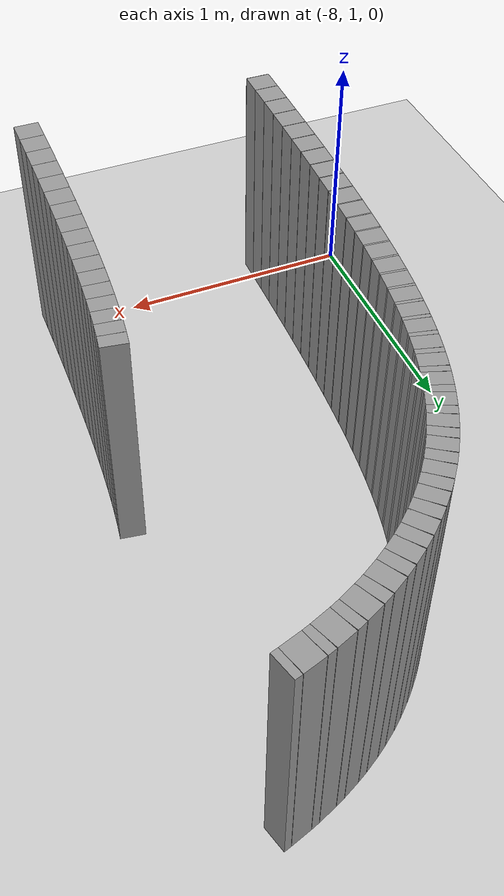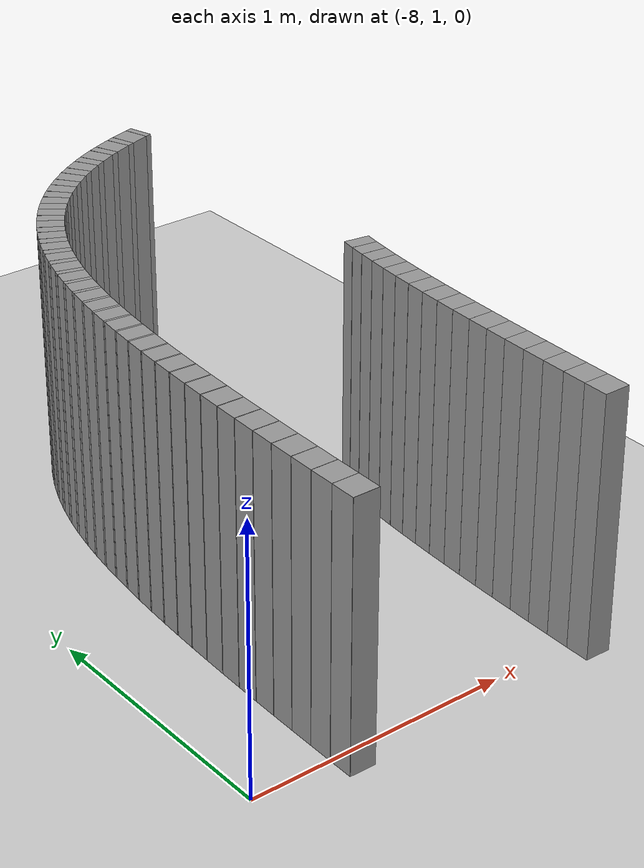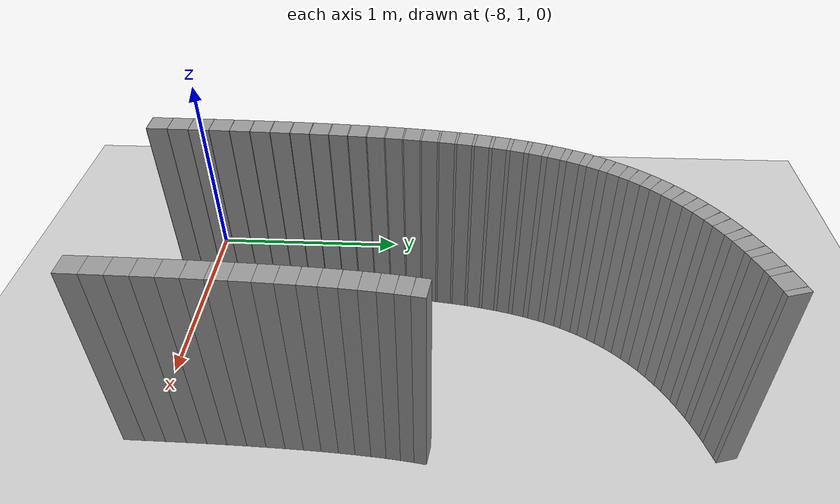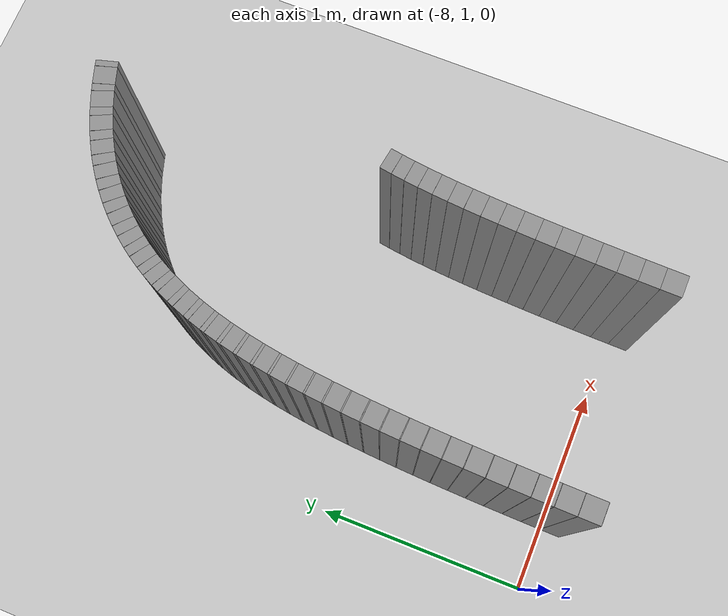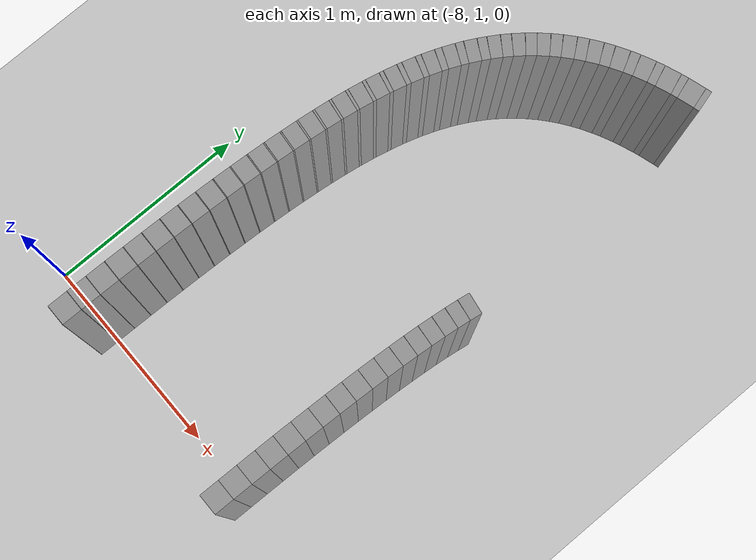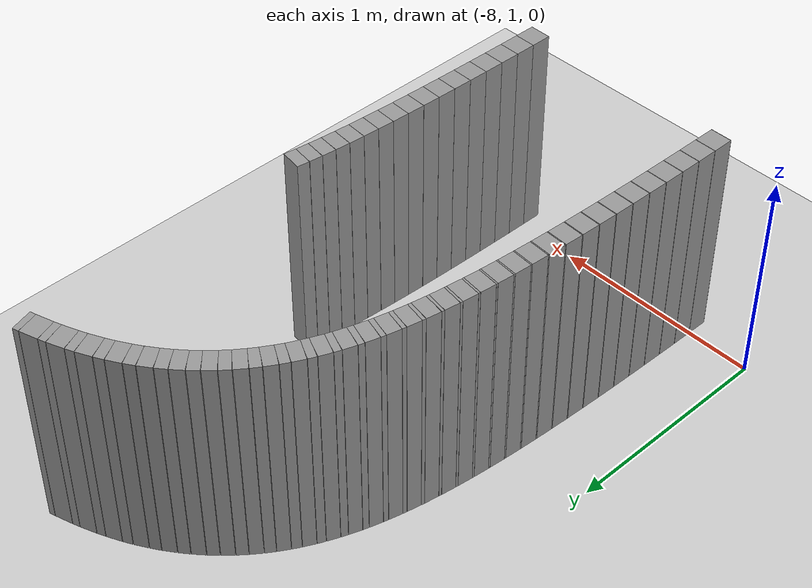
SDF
<sdf version="1.6">
 <world name="default">
  <include><uri>model://ground_plane</uri></include>
  <include><uri>model://sun</uri></include>
  <model name="wall_49_outward">
   <static>true</static>
   <link name="link">
    <collision name="collision">
     <geometry><box><size>0.056570701424024726 0.1 1.0</size></box></geometry>
    </collision>
    <visual name="visual">
     <geometry><box><size>0.056570701424024726 0.1 1.0</size></box></geometry>
     <material>
      <script><uri>file://media/materials/scripts/gazebo.material</uri><name>Gazebo/Gray</name></script>
     </material>
    </visual>
   </link>
   <pose>-6.5779667077379536 2.225355625883908 0.5 0 0 -1.7261046422392725</pose>
  </model>
  <model name="wall_50_outward">
   <static>true</static>
   <link name="link">
    <collision name="collision">
     <geometry><box><size>0.060661920310766025 0.1 1.0</size></box></geometry>
    </collision>
    <visual name="visual">
     <geometry><box><size>0.060661920310766025 0.1 1.0</size></box></geometry>
     <material>
      <script><uri>file://media/materials/scripts/gazebo.material</uri><name>Gazebo/Gray</name></script>
     </material>
    </visual>
   </link>
   <pose>-6.586377185959433 2.167349374068392 0.5 0 0 -1.704229816331041</pose>
  </model>
  <model name="wall_51_outward">
   <static>true</static>
   <link name="link">
    <collision name="collision">
     <geometry><box><size>0.06444283778980993 0.1 1.0</size></box></geometry>
    </collision>
    <visual name="visual">
     <geometry><box><size>0.06444283778980993 0.1 1.0</size></box></geometry>
     <material>
      <script><uri>file://media/materials/scripts/gazebo.material</uri><name>Gazebo/Gray</name></script>
     </material>
    </visual>
   </link>
   <pose>-6.594106605859016 2.1052790858456865 0.5 0 0 -1.6857010988047292</pose>
  </model>
  <model name="wall_52_outward">
   <static>true</static>
   <link name="link">
    <collision name="collision">
     <geometry><box><size>0.06794869917491102 0.1 1.0</size></box></geometry>
    </collision>
    <visual name="visual">
     <geometry><box><size>0.06794869917491102 0.1 1.0</size></box></geometry>
     <material>
      <script><uri>file://media/materials/scripts/gazebo.material</uri><name>Gazebo/Gray</name></script>
     </material>
    </visual>
   </link>
   <pose>-6.601163390427155 2.0394626036857804 0.5 0 0 -1.6699312808979285</pose>
  </model>
  <model name="wall_53_outward">
   <static>true</static>
   <link name="link">
    <collision name="collision">
     <geometry><box><size>0.07123879180609102 0.1 1.0</size></box></geometry>
    </collision>
    <visual name="visual">
     <geometry><box><size>0.07123879180609102 0.1 1.0</size></box></geometry>
     <material>
      <script><uri>file://media/materials/scripts/gazebo.material</uri><name>Gazebo/Gray</name></script>
     </material>
    </visual>
   </link>
   <pose>-6.607570051628232 1.970165985193051 0.5 0 0 -1.6563634013423234</pose>
  </model>
  <model name="wall_54_outward">
   <static>true</static>
   <link name="link">
    <collision name="collision">
     <geometry><box><size>0.07434558531103215 0.1 1.0</size></box></geometry>
    </collision>
    <visual name="visual">
     <geometry><box><size>0.07434558531103215 0.1 1.0</size></box></geometry>
     <material>
      <script><uri>file://media/materials/scripts/gazebo.material</uri><name>Gazebo/Gray</name></script>
     </material>
    </visual>
   </link>
   <pose>-6.613359297207834 1.89760561326572 0.5 0 0 -1.6447110630068738</pose>
  </model>
  <model name="wall_55_outward">
   <static>true</static>
   <link name="link">
    <collision name="collision">
     <geometry><box><size>0.07726013353156092 0.1 1.0</size></box></geometry>
    </collision>
    <visual name="visual">
     <geometry><box><size>0.07726013353156092 0.1 1.0</size></box></geometry>
     <material>
      <script><uri>file://media/materials/scripts/gazebo.material</uri><name>Gazebo/Gray</name></script>
     </material>
    </visual>
   </link>
   <pose>-6.618567767896582 1.8219828736938526 0.5 0 0 -1.6346074320864317</pose>
  </model>
  <model name="wall_56_outward">
   <static>true</static>
   <link name="link">
    <collision name="collision">
     <geometry><box><size>0.08000409625759336 0.1 1.0</size></box></geometry>
    </collision>
    <visual name="visual">
     <geometry><box><size>0.08000409625759336 0.1 1.0</size></box></geometry>
     <material>
      <script><uri>file://media/materials/scripts/gazebo.material</uri><name>Gazebo/Gray</name></script>
     </material>
    </visual>
   </link>
   <pose>-6.623229907448105 1.7434898559767587 0.5 0 0 -1.6257908496668392</pose>
  </model>
  <model name="wall_57_outward">
   <static>true</static>
   <link name="link">
    <collision name="collision">
     <geometry><box><size>0.08258377150234449 0.1 1.0</size></box></geometry>
    </collision>
    <visual name="visual">
     <geometry><box><size>0.08258377150234449 0.1 1.0</size></box></geometry>
     <material>
      <script><uri>file://media/materials/scripts/gazebo.material</uri><name>Gazebo/Gray</name></script>
     </material>
    </visual>
   </link>
   <pose>-6.627379206973265 1.662302492093223 0.5 0 0 -1.6180511512007203</pose>
  </model>
  <model name="wall_58_outward">
   <static>true</static>
   <link name="link">
    <collision name="collision">
     <geometry><box><size>0.08500392790966992 0.1 1.0</size></box></geometry>
    </collision>
    <visual name="visual">
     <geometry><box><size>0.08500392790966992 0.1 1.0</size></box></geometry>
     <material>
      <script><uri>file://media/materials/scripts/gazebo.material</uri><name>Gazebo/Gray</name></script>
     </material>
    </visual>
   </link>
   <pose>-6.631047580006484 1.5785894672510299 0.5 0 0 -1.6112256680778254</pose>
  </model>
  <model name="wall_59_outward">
   <static>true</static>
   <link name="link">
    <collision name="collision">
     <geometry><box><size>0.08725417623695413 0.1 1.0</size></box></geometry>
    </collision>
    <visual name="visual">
     <geometry><box><size>0.08725417623695413 0.1 1.0</size></box></geometry>
     <material>
      <script><uri>file://media/materials/scripts/gazebo.material</uri><name>Gazebo/Gray</name></script>
     </material>
    </visual>
   </link>
   <pose>-6.634266493693547 1.4925209765254377 0.5 0 0 -1.6052096176042205</pose>
  </model>
  <model name="wall_60_outward">
   <static>true</static>
   <link name="link">
    <collision name="collision">
     <geometry><box><size>0.08931690482689453 0.1 1.0</size></box></geometry>
    </collision>
    <visual name="visual">
     <geometry><box><size>0.08931690482689453 0.1 1.0</size></box></geometry>
     <material>
      <script><uri>file://media/materials/scripts/gazebo.material</uri><name>Gazebo/Gray</name></script>
     </material>
    </visual>
   </link>
   <pose>-6.637066803971237 1.4042801703782144 0.5 0 0 -1.59989357957921</pose>
  </model>
  <model name="wall_61_outward">
   <static>true</static>
   <link name="link">
    <collision name="collision">
     <geometry><box><size>0.09117428337926287 0.1 1.0</size></box></geometry>
    </collision>
    <visual name="visual">
     <geometry><box><size>0.09117428337926287 0.1 1.0</size></box></geometry>
     <material>
      <script><uri>file://media/materials/scripts/gazebo.material</uri><name>Gazebo/Gray</name></script>
     </material>
    </visual>
   </link>
   <pose>-6.639479142666225 1.3140670708792523 0.5 0 0 -1.5952153703341418</pose>
  </model>
  <model name="wall_62_outward">
   <static>true</static>
   <link name="link">
    <collision name="collision">
     <geometry><box><size>0.09279264553125924 0.1 1.0</size></box></geometry>
    </collision>
    <visual name="visual">
     <geometry><box><size>0.09279264553125924 0.1 1.0</size></box></geometry>
     <material>
      <script><uri>file://media/materials/scripts/gazebo.material</uri><name>Gazebo/Gray</name></script>
     </material>
    </visual>
   </link>
   <pose>-6.641534927853381 1.2221067754248607 0.5 0 0 -1.5911161762372308</pose>
  </model>
  <model name="wall_63_outward">
   <static>true</static>
   <link name="link">
    <collision name="collision">
     <geometry><box><size>0.09414056988934752 0.1 1.0</size></box></geometry>
    </collision>
    <visual name="visual">
     <geometry><box><size>0.09414056988934752 0.1 1.0</size></box></geometry>
     <material>
      <script><uri>file://media/materials/scripts/gazebo.material</uri><name>Gazebo/Gray</name></script>
     </material>
    </visual>
   </link>
   <pose>-6.643265457971897 1.1286563393375038 0.5 0 0 -1.5875343918012572</pose>
  </model>
  <model name="wall_64_outward">
   <static>true</static>
   <link name="link">
    <collision name="collision">
     <geometry><box><size>0.0951912660683378 0.1 1.0</size></box></geometry>
    </collision>
    <visual name="visual">
     <geometry><box><size>0.0951912660683378 0.1 1.0</size></box></geometry>
     <material>
      <script><uri>file://media/materials/scripts/gazebo.material</uri><name>Gazebo/Gray</name></script>
     </material>
    </visual>
   </link>
   <pose>-6.64470134997784 1.0340014271040308 0.5 0 0 -1.5844127720375745</pose>
  </model>
  <model name="wall_65_outward">
   <static>true</static>
   <link name="link">
    <collision name="collision">
     <geometry><box><size>0.0959221498164724 0.1 1.0</size></box></geometry>
    </collision>
    <visual name="visual">
     <geometry><box><size>0.0959221498164724 0.1 1.0</size></box></geometry>
     <material>
      <script><uri>file://media/materials/scripts/gazebo.material</uri><name>Gazebo/Gray</name></script>
     </material>
    </visual>
   </link>
   <pose>-6.645872458408411 0.9384519835388287 0.5 0 0 -1.5817021602312016</pose>
  </model>
  <model name="wall_58_inward">
   <static>true</static>
   <link name="link">
    <collision name="collision">
     <geometry><box><size>0.027664682970193952 0.1 1.0</size></box></geometry>
    </collision>
    <visual name="visual">
     <geometry><box><size>0.027664682970193952 0.1 1.0</size></box></geometry>
     <material>
      <script><uri>file://media/materials/scripts/gazebo.material</uri><name>Gazebo/Gray</name></script>
     </material>
    </visual>
   </link>
   <pose>-6.613120750376876 3.5437936237818333 0.5 0 0 -2.8663508331023926</pose>
  </model>
  <model name="wall_59_inward">
   <static>true</static>
   <link name="link">
    <collision name="collision">
     <geometry><box><size>0.08242482659146055 0.1 1.0</size></box></geometry>
    </collision>
    <visual name="visual">
     <geometry><box><size>0.08242482659146055 0.1 1.0</size></box></geometry>
     <material>
      <script><uri>file://media/materials/scripts/gazebo.material</uri><name>Gazebo/Gray</name></script>
     </material>
    </visual>
   </link>
   <pose>-6.665768549645563 3.5277406524789217 0.5 0 0 -2.83868262012609</pose>
  </model>
  <model name="wall_60_inward">
   <static>true</static>
   <link name="link">
    <collision name="collision">
     <geometry><box><size>0.03276077533861807 0.1 1.0</size></box></geometry>
    </collision>
    <visual name="visual">
     <geometry><box><size>0.03276077533861807 0.1 1.0</size></box></geometry>
     <material>
      <script><uri>file://media/materials/scripts/gazebo.material</uri><name>Gazebo/Gray</name></script>
     </material>
    </visual>
   </link>
   <pose>-6.7205708229487495 3.510051197080387 0.5 0 0 -2.8059159817711983</pose>
  </model>
  <model name="wall_61_inward">
   <static>true</static>
   <link name="link">
    <collision name="collision">
     <geometry><box><size>0.07563575151495724 0.1 1.0</size></box></geometry>
    </collision>
    <visual name="visual">
     <geometry><box><size>0.07563575151495724 0.1 1.0</size></box></geometry>
     <material>
      <script><uri>file://media/materials/scripts/gazebo.material</uri><name>Gazebo/Gray</name></script>
     </material>
    </visual>
   </link>
   <pose>-6.771316867818796 3.491034739710824 0.5 0 0 -2.773149343416321</pose>
  </model>
  <model name="wall_62_inward">
   <static>true</static>
   <link name="link">
    <collision name="collision">
     <geometry><box><size>0.03804019176117815 0.1 1.0</size></box></geometry>
    </collision>
    <visual name="visual">
     <geometry><box><size>0.03804019176117815 0.1 1.0</size></box></geometry>
     <material>
      <script><uri>file://media/materials/scripts/gazebo.material</uri><name>Gazebo/Gray</name></script>
     </material>
    </visual>
   </link>
   <pose>-6.824066963041432 3.4698937551041293 0.5 0 0 -2.735099971293381</pose>
  </model>
  <model name="wall_63_inward">
   <static>true</static>
   <link name="link">
    <collision name="collision">
     <geometry><box><size>0.06974362897317701 0.1 1.0</size></box></geometry>
    </collision>
    <visual name="visual">
     <geometry><box><size>0.06974362897317701 0.1 1.0</size></box></geometry>
     <material>
      <script><uri>file://media/materials/scripts/gazebo.material</uri><name>Gazebo/Gray</name></script>
     </material>
    </visual>
   </link>
   <pose>-6.873019715245392 3.447376963034143 0.5 0 0 -2.6970505991704243</pose>
  </model>
  <model name="wall_64_inward">
   <static>true</static>
   <link name="link">
    <collision name="collision">
     <geometry><box><size>0.04304816519704628 0.1 1.0</size></box></geometry>
    </collision>
    <visual name="visual">
     <geometry><box><size>0.04304816519704628 0.1 1.0</size></box></geometry>
     <material>
      <script><uri>file://media/materials/scripts/gazebo.material</uri><name>Gazebo/Gray</name></script>
     </material>
    </visual>
   </link>
   <pose>-6.923517884318352 3.4222962823611085 0.5 0 0 -2.6539891271283094</pose>
  </model>
  <model name="wall_65_inward">
   <static>true</static>
   <link name="link">
    <collision name="collision">
     <geometry><box><size>0.06484629052584087 0.1 1.0</size></box></geometry>
    </collision>
    <visual name="visual">
     <geometry><box><size>0.06484629052584087 0.1 1.0</size></box></geometry>
     <material>
      <script><uri>file://media/materials/scripts/gazebo.material</uri><name>Gazebo/Gray</name></script>
     </material>
    </visual>
   </link>
   <pose>-6.970497523682079 3.395802452705197 0.5 0 0 -2.610927655086227</pose>
  </model>
  <model name="wall_66_inward">
   <static>true</static>
   <link name="link">
    <collision name="collision">
     <geometry><box><size>0.04714303995080613 0.1 1.0</size></box></geometry>
    </collision>
    <visual name="visual">
     <geometry><box><size>0.04714303995080613 0.1 1.0</size></box></geometry>
     <material>
      <script><uri>file://media/materials/scripts/gazebo.material</uri><name>Gazebo/Gray</name></script>
     </material>
    </visual>
   </link>
   <pose>-7.018206275353085 3.366518019023368 0.5 0 0 -2.5637671353457954</pose>
  </model>
  <model name="wall_67_inward">
   <static>true</static>
   <link name="link">
    <collision name="collision">
     <geometry><box><size>0.061007189435378965 0.1 1.0</size></box></geometry>
    </collision>
    <visual name="visual">
     <geometry><box><size>0.061007189435378965 0.1 1.0</size></box></geometry>
     <material>
      <script><uri>file://media/materials/scripts/gazebo.material</uri><name>Gazebo/Gray</name></script>
     </material>
    </visual>
   </link>
   <pose>-7.062688553719518 3.3357959412522984 0.5 0 0 -2.5166066156053604</pose>
  </model>
  <model name="wall_68_inward">
   <static>true</static>
   <link name="link">
    <collision name="collision">
     <geometry><box><size>0.04967199549694586 0.1 1.0</size></box></geometry>
    </collision>
    <visual name="visual">
     <geometry><box><size>0.04967199549694586 0.1 1.0</size></box></geometry>
     <material>
      <script><uri>file://media/materials/scripts/gazebo.material</uri><name>Gazebo/Gray</name></script>
     </material>
    </visual>
   </link>
   <pose>-7.106820718251377 3.3024350031161016 0.5 0 0 -2.4669141713847873</pose>
  </model>
  <model name="wall_69_inward">
   <static>true</static>
   <link name="link">
    <collision name="collision">
     <geometry><box><size>0.05823391538451826 0.1 1.0</size></box></geometry>
    </collision>
    <visual name="visual">
     <geometry><box><size>0.05823391538451826 0.1 1.0</size></box></geometry>
     <material>
      <script><uri>file://media/materials/scripts/gazebo.material</uri><name>Gazebo/Gray</name></script>
     </material>
    </visual>
   </link>
   <pose>-7.148021511416872 3.26762651691711 0.5 0 0 -2.4172217271642293</pose>
  </model>
  <model name="wall_70_inward">
   <static>true</static>
   <link name="link">
    <collision name="collision">
     <geometry><box><size>0.050134478539932886 0.1 1.0</size></box></geometry>
    </collision>
    <visual name="visual">
     <geometry><box><size>0.050134478539932886 0.1 1.0</size></box></geometry>
     <material>
      <script><uri>file://media/materials/scripts/gazebo.material</uri><name>Gazebo/Gray</name></script>
     </material>
    </visual>
   </link>
   <pose>-7.187744546939273 3.2308002767857653 0.5 0 0 -2.3670662229502923</pose>
  </model>
  <model name="wall_71_inward">
   <static>true</static>
   <link name="link">
    <collision name="collision">
     <geometry><box><size>0.056483389454661366 0.1 1.0</size></box></geometry>
    </collision>
    <visual name="visual">
     <geometry><box><size>0.056483389454661366 0.1 1.0</size></box></geometry>
     <material>
      <script><uri>file://media/materials/scripts/gazebo.material</uri><name>Gazebo/Gray</name></script>
     </material>
    </visual>
   </link>
   <pose>-7.224831610244276 3.1925300315104503 0.5 0 0 -2.3169107187363447</pose>
  </model>
  <model name="wall_72_inward">
   <static>true</static>
   <link name="link">
    <collision name="collision">
     <geometry><box><size>0.04849355262185562 0.1 1.0</size></box></geometry>
    </collision>
    <visual name="visual">
     <geometry><box><size>0.04849355262185562 0.1 1.0</size></box></geometry>
     <material>
      <script><uri>file://media/materials/scripts/gazebo.material</uri><name>Gazebo/Gray</name></script>
     </material>
    </visual>
   </link>
   <pose>-7.259577489176273 3.1532088893702914 0.5 0 0 -2.2683981395341575</pose>
  </model>
  <model name="wall_73_inward">
   <static>true</static>
   <link name="link">
    <collision name="collision">
     <geometry><box><size>0.055652671105604026 0.1 1.0</size></box></geometry>
    </collision>
    <visual name="visual">
     <geometry><box><size>0.055652671105604026 0.1 1.0</size></box></geometry>
     <material>
      <script><uri>file://media/materials/scripts/gazebo.material</uri><name>Gazebo/Gray</name></script>
     </material>
    </visual>
   </link>
   <pose>-7.291973109809283 3.112459102003478 0.5 0 0 -2.219885560331987</pose>
  </model>
  <model name="wall_74_inward">
   <static>true</static>
   <link name="link">
    <collision name="collision">
     <geometry><box><size>0.045098023846961696 0.1 1.0</size></box></geometry>
    </collision>
    <visual name="visual">
     <geometry><box><size>0.045098023846961696 0.1 1.0</size></box></geometry>
     <material>
      <script><uri>file://media/materials/scripts/gazebo.material</uri><name>Gazebo/Gray</name></script>
     </material>
    </visual>
   </link>
   <pose>-7.32159907013662 3.071731944997124 0.5 0 0 -2.1747722355115746</pose>
  </model>
  <model name="wall_75_inward">
   <static>true</static>
   <link name="link">
    <collision name="collision">
     <geometry><box><size>0.05560367680122284 0.1 1.0</size></box></geometry>
    </collision>
    <visual name="visual">
     <geometry><box><size>0.05560367680122284 0.1 1.0</size></box></geometry>
     <material>
      <script><uri>file://media/materials/scripts/gazebo.material</uri><name>Gazebo/Gray</name></script>
     </material>
    </visual>
   </link>
   <pose>-7.34914624400062 3.029600179376872 0.5 0 0 -2.1296589106911394</pose>
  </model>
  <model name="wall_76_inward">
   <static>true</static>
   <link name="link">
    <collision name="collision">
     <geometry><box><size>0.04057140861477485 0.1 1.0</size></box></geometry>
    </collision>
    <visual name="visual">
     <geometry><box><size>0.04057140861477485 0.1 1.0</size></box></geometry>
     <material>
      <script><uri>file://media/materials/scripts/gazebo.material</uri><name>Gazebo/Gray</name></script>
     </material>
    </visual>
   </link>
   <pose>-7.3739366650365366 2.9884065139263996 0.5 0 0 -2.0890763634690273</pose>
  </model>
  <model name="wall_77_inward">
   <static>true</static>
   <link name="link">
    <collision name="collision">
     <geometry><box><size>0.05618392672088215 0.1 1.0</size></box></geometry>
    </collision>
    <visual name="visual">
     <geometry><box><size>0.05618392672088215 0.1 1.0</size></box></geometry>
     <material>
      <script><uri>file://media/materials/scripts/gazebo.material</uri><name>Gazebo/Gray</name></script>
     </material>
    </visual>
   </link>
   <pose>-7.396900811605716 2.9458376486085767 0.5 0 0 -2.0484938162469004</pose>
  </model>
  <model name="wall_78_inward">
   <static>true</static>
   <link name="link">
    <collision name="collision">
     <geometry><box><size>0.03558427314017571 0.1 1.0</size></box></geometry>
    </collision>
    <visual name="visual">
     <geometry><box><size>0.03558427314017571 0.1 1.0</size></box></geometry>
     <material>
      <script><uri>file://media/materials/scripts/gazebo.material</uri><name>Gazebo/Gray</name></script>
     </material>
    </visual>
   </link>
   <pose>-7.417427941083471 2.9048089453138872 0.5 0 0 -2.0129020291164657</pose>
  </model>
  <model name="wall_79_inward">
   <static>true</static>
   <link name="link">
    <collision name="collision">
     <geometry><box><size>0.05724812713214473 0.1 1.0</size></box></geometry>
    </collision>
    <visual name="visual">
     <geometry><box><size>0.05724812713214473 0.1 1.0</size></box></geometry>
     <material>
      <script><uri>file://media/materials/scripts/gazebo.material</uri><name>Gazebo/Gray</name></script>
     </material>
    </visual>
   </link>
   <pose>-7.436358427718382 2.8624361329042505 0.5 0 0 -1.977310241986029</pose>
  </model>
  <model name="wall_80_inward">
   <static>true</static>
   <link name="link">
    <collision name="collision">
     <geometry><box><size>0.030631295244048628 0.1 1.0</size></box></geometry>
    </collision>
    <visual name="visual">
     <geometry><box><size>0.030631295244048628 0.1 1.0</size></box></geometry>
     <material>
      <script><uri>file://media/materials/scripts/gazebo.material</uri><name>Gazebo/Gray</name></script>
     </material>
    </visual>
   </link>
   <pose>-7.453298870614054 2.8218983951696557 0.5 0 0 -1.9466741546155315</pose>
  </model>
  <model name="wall_81_inward">
   <static>true</static>
   <link name="link">
    <collision name="collision">
     <geometry><box><size>0.05867219753789073 0.1 1.0</size></box></geometry>
    </collision>
    <visual name="visual">
     <geometry><box><size>0.05867219753789073 0.1 1.0</size></box></geometry>
     <material>
      <script><uri>file://media/materials/scripts/gazebo.material</uri><name>Gazebo/Gray</name></script>
     </material>
    </visual>
   </link>
   <pose>-7.468849124333719 2.780046914941379 0.5 0 0 -1.916038067245081</pose>
  </model>
  <model name="wall_82_inward">
   <static>true</static>
   <link name="link">
    <collision name="collision">
     <geometry><box><size>0.026055813865726706 0.1 1.0</size></box></geometry>
    </collision>
    <visual name="visual">
     <geometry><box><size>0.026055813865726706 0.1 1.0</size></box></geometry>
     <material>
      <script><uri>file://media/materials/scripts/gazebo.material</uri><name>Gazebo/Gray</name></script>
     </material>
    </visual>
   </link>
   <pose>-7.48286520777443 2.7400719368857835 0.5 0 0 -1.8899793042393551</pose>
  </model>
  <model name="wall_83_inward">
   <static>true</static>
   <link name="link">
    <collision name="collision">
     <geometry><box><size>0.060358498575318935 0.1 1.0</size></box></geometry>
    </collision>
    <visual name="visual">
     <geometry><box><size>0.060358498575318935 0.1 1.0</size></box></geometry>
     <material>
      <script><uri>file://media/materials/scripts/gazebo.material</uri><name>Gazebo/Gray</name></script>
     </material>
    </visual>
   </link>
   <pose>-7.495673377164809 2.698810063766671 0.5 0 0 -1.8639205412335886</pose>
  </model>
  <model name="wall_84_inward">
   <static>true</static>
   <link name="link">
    <collision name="collision">
     <geometry><box><size>0.021969472356135396 0.1 1.0</size></box></geometry>
    </collision>
    <visual name="visual">
     <geometry><box><size>0.021969472356135396 0.1 1.0</size></box></geometry>
     <material>
      <script><uri>file://media/materials/scripts/gazebo.material</uri><name>Gazebo/Gray</name></script>
     </material>
    </visual>
   </link>
   <pose>-7.507335686582829 2.659334701668736 0.5 0 0 -1.8419493012042578</pose>
  </model>
  <model name="wall_85_inward">
   <static>true</static>
   <link name="link">
    <collision name="collision">
     <geometry><box><size>0.06223440331812633 0.1 1.0</size></box></geometry>
    </collision>
    <visual name="visual">
     <geometry><box><size>0.06223440331812633 0.1 1.0</size></box></geometry>
     <material>
      <script><uri>file://media/materials/scripts/gazebo.material</uri><name>Gazebo/Gray</name></script>
     </material>
    </visual>
   </link>
   <pose>-7.517951711105511 2.6185951853022145 0.5 0 0 -1.8199780611749543</pose>
  </model>
  <model name="wall_86_inward">
   <static>true</static>
   <link name="link">
    <collision name="collision">
     <geometry><box><size>0.018448833342376035 0.1 1.0</size></box></geometry>
    </collision>
    <visual name="visual">
     <geometry><box><size>0.018448833342376035 0.1 1.0</size></box></geometry>
     <material>
      <script><uri>file://media/materials/scripts/gazebo.material</uri><name>Gazebo/Gray</name></script>
     </material>
    </visual>
   </link>
   <pose>-7.527735089100218 2.5794590896858374 0.5 0 0 -1.8015281811331316</pose>
  </model>
  <model name="wall_87_inward">
   <static>true</static>
   <link name="link">
    <collision name="collision">
     <geometry><box><size>0.06424596721711477 0.1 1.0</size></box></geometry>
    </collision>
    <visual name="visual">
     <geometry><box><size>0.06424596721711477 0.1 1.0</size></box></geometry>
     <material>
      <script><uri>file://media/materials/scripts/gazebo.material</uri><name>Gazebo/Gray</name></script>
     </material>
    </visual>
   </link>
   <pose>-7.536612651211497 2.5390772182780825 0.5 0 0 -1.7830783010912905</pose>
  </model>
  <model name="wall_88_inward">
   <static>true</static>
   <link name="link">
    <collision name="collision">
     <geometry><box><size>0.0154939024222421 0.1 1.0</size></box></geometry>
    </collision>
    <visual name="visual">
     <geometry><box><size>0.0154939024222421 0.1 1.0</size></box></geometry>
     <material>
      <script><uri>file://media/materials/scripts/gazebo.material</uri><name>Gazebo/Gray</name></script>
     </material>
    </visual>
   </link>
   <pose>-7.544895363416172 2.5000778767830507 0.5 0 0 -1.7675837786884305</pose>
  </model>
  <model name="wall_89_inward">
   <static>true</static>
   <link name="link">
    <collision name="collision">
     <geometry><box><size>0.06635598073837366 0.1 1.0</size></box></geometry>
    </collision>
    <visual name="visual">
     <geometry><box><size>0.06635598073837366 0.1 1.0</size></box></geometry>
     <material>
      <script><uri>file://media/materials/scripts/gazebo.material</uri><name>Gazebo/Gray</name></script>
     </material>
    </visual>
   </link>
   <pose>-7.552392086002323 2.4598461941480045 0.5 0 0 -1.7520892562855521</pose>
  </model>
  <model name="wall_90_inward">
   <static>true</static>
   <link name="link">
    <collision name="collision">
     <geometry><box><size>0.012991941509228623 0.1 1.0</size></box></geometry>
    </collision>
    <visual name="visual">
     <geometry><box><size>0.012991941509228623 0.1 1.0</size></box></geometry>
     <material>
      <script><uri>file://media/materials/scripts/gazebo.material</uri><name>Gazebo/Gray</name></script>
     </material>
    </visual>
   </link>
   <pose>-7.5594622482716645 2.420807756462624 0.5 0 0 -1.7390969492624402</pose>
  </model>
  <model name="wall_91_inward">
   <static>true</static>
   <link name="link">
    <collision name="collision">
     <geometry><box><size>0.0685361450330409 0.1 1.0</size></box></geometry>
    </collision>
    <visual name="visual">
     <geometry><box><size>0.0685361450330409 0.1 1.0</size></box></geometry>
     <material>
      <script><uri>file://media/materials/scripts/gazebo.material</uri><name>Gazebo/Gray</name></script>
     </material>
    </visual>
   </link>
   <pose>-7.565851117205613 2.3805479501733133 0.5 0 0 -1.726104642239275</pose>
  </model>
  <model name="wall_92_inward">
   <static>true</static>
   <link name="link">
    <collision name="collision">
     <geometry><box><size>0.010937194887103768 0.1 1.0</size></box></geometry>
    </collision>
    <visual name="visual">
     <geometry><box><size>0.010937194887103768 0.1 1.0</size></box></geometry>
     <material>
      <script><uri>file://media/materials/scripts/gazebo.material</uri><name>Gazebo/Gray</name></script>
     </material>
    </visual>
   </link>
   <pose>-7.571938630702132 2.341280626591576 0.5 0 0 -1.7151672292850926</pose>
  </model>
  <model name="wall_93_inward">
   <static>true</static>
   <link name="link">
    <collision name="collision">
     <geometry><box><size>0.07076315677682152 0.1 1.0</size></box></geometry>
    </collision>
    <visual name="visual">
     <geometry><box><size>0.07076315677682152 0.1 1.0</size></box></geometry>
     <material>
      <script><uri>file://media/materials/scripts/gazebo.material</uri><name>Gazebo/Gray</name></script>
     </material>
    </visual>
   </link>
   <pose>-7.577432487804645 2.3008018512453834 0.5 0 0 -1.7042298163310357</pose>
  </model>
  <model name="wall_94_inward">
   <static>true</static>
   <link name="link">
    <collision name="collision">
     <geometry><box><size>0.009264226239622792 0.1 1.0</size></box></geometry>
    </collision>
    <visual name="visual">
     <geometry><box><size>0.009264226239622792 0.1 1.0</size></box></geometry>
     <material>
      <script><uri>file://media/materials/scripts/gazebo.material</uri><name>Gazebo/Gray</name></script>
     </material>
    </visual>
   </link>
   <pose>-7.582713266927726 2.2611383313116287 0.5 0 0 -1.6949654575678683</pose>
  </model>
  <model name="wall_95_inward">
   <static>true</static>
   <link name="link">
    <collision name="collision">
     <geometry><box><size>0.07301768588192474 0.1 1.0</size></box></geometry>
    </collision>
    <visual name="visual">
     <geometry><box><size>0.07301768588192474 0.1 1.0</size></box></geometry>
     <material>
      <script><uri>file://media/materials/scripts/gazebo.material</uri><name>Gazebo/Gray</name></script>
     </material>
    </visual>
   </link>
   <pose>-7.587472770651433 2.220273788302977 0.5 0 0 -1.6857010988047394</pose>
  </model>
  <model name="wall_96_inward">
   <static>true</static>
   <link name="link">
    <collision name="collision">
     <geometry><box><size>0.00788482725050996 0.1 1.0</size></box></geometry>
    </collision>
    <visual name="visual">
     <geometry><box><size>0.00788482725050996 0.1 1.0</size></box></geometry>
     <material>
      <script><uri>file://media/materials/scripts/gazebo.material</uri><name>Gazebo/Gray</name></script>
     </material>
    </visual>
   </link>
   <pose>-7.592079697398694 2.1800858369343388 0.5 0 0 -1.6778161898513397</pose>
  </model>
  <model name="wall_97_inward">
   <static>true</static>
   <link name="link">
    <collision name="collision">
     <geometry><box><size>0.07528325728154832 0.1 1.0</size></box></geometry>
    </collision>
    <visual name="visual">
     <geometry><box><size>0.07528325728154832 0.1 1.0</size></box></geometry>
     <material>
      <script><uri>file://media/materials/scripts/gazebo.material</uri><name>Gazebo/Gray</name></script>
     </material>
    </visual>
   </link>
   <pose>-7.596226300970027 2.1387091644747307 0.5 0 0 -1.669931280897928</pose>
  </model>
  <model name="wall_98_inward">
   <static>true</static>
   <link name="link">
    <collision name="collision">
     <geometry><box><size>0.006783887743028946 0.1 1.0</size></box></geometry>
    </collision>
    <visual name="visual">
     <geometry><box><size>0.006783887743028946 0.1 1.0</size></box></geometry>
     <material>
      <script><uri>file://media/materials/scripts/gazebo.material</uri><name>Gazebo/Gray</name></script>
     </material>
    </visual>
   </link>
   <pose>-7.600264597278 2.0978748607573534 0.5 0 0 -1.6631473411201163</pose>
  </model>
  <model name="wall_99_inward">
   <static>true</static>
   <link name="link">
    <collision name="collision">
     <geometry><box><size>0.07754393127601014 0.1 1.0</size></box></geometry>
    </collision>
    <visual name="visual">
     <geometry><box><size>0.07754393127601014 0.1 1.0</size></box></geometry>
     <material>
      <script><uri>file://media/materials/scripts/gazebo.material</uri><name>Gazebo/Gray</name></script>
     </material>
    </visual>
   </link>
   <pose>-7.60389095838199 2.0558672576615526 0.5 0 0 -1.6563634013423154</pose>
  </model>
  <model name="wall_100_inward">
   <static>true</static>
   <link name="link">
    <collision name="collision">
     <geometry><box><size>0.005826136206950376 0.1 1.0</size></box></geometry>
    </collision>
    <visual name="visual">
     <geometry><box><size>0.005826136206950376 0.1 1.0</size></box></geometry>
     <material>
      <script><uri>file://media/materials/scripts/gazebo.material</uri><name>Gazebo/Gray</name></script>
     </material>
    </visual>
   </link>
   <pose>-7.607436559699892 2.014333332786965 0.5 0 0 -1.650537232174664</pose>
  </model>
  <model name="wall_101_inward">
   <static>true</static>
   <link name="link">
    <collision name="collision">
     <geometry><box><size>0.07978463207425615 0.1 1.0</size></box></geometry>
    </collision>
    <visual name="visual">
     <geometry><box><size>0.07978463207425615 0.1 1.0</size></box></geometry>
     <material>
      <script><uri>file://media/materials/scripts/gazebo.material</uri><name>Gazebo/Gray</name></script>
     </material>
    </visual>
   </link>
   <pose>-7.610614550123449 1.971646129274959 0.5 0 0 -1.6447110630068842</pose>
  </model>
  <model name="wall_102_inward">
   <static>true</static>
   <link name="link">
    <collision name="collision">
     <geometry><box><size>0.005051793972493494 0.1 1.0</size></box></geometry>
    </collision>
    <visual name="visual">
     <geometry><box><size>0.005051793972493494 0.1 1.0</size></box></geometry>
     <material>
      <script><uri>file://media/materials/scripts/gazebo.material</uri><name>Gazebo/Gray</name></script>
     </material>
    </visual>
   </link>
   <pose>-7.613734299157681 1.929342826915847 0.5 0 0 -1.6396592475467249</pose>
  </model>
  <model name="wall_103_inward">
   <static>true</static>
   <link name="link">
    <collision name="collision">
     <geometry><box><size>0.08199022263229053 0.1 1.0</size></box></geometry>
    </collision>
    <visual name="visual">
     <geometry><box><size>0.08199022263229053 0.1 1.0</size></box></geometry>
     <material>
      <script><uri>file://media/materials/scripts/gazebo.material</uri><name>Gazebo/Gray</name></script>
     </material>
    </visual>
   </link>
   <pose>-7.616522270794971 1.885911240079262 0.5 0 0 -1.6346074320864283</pose>
  </model>
  <model name="wall_104_inward">
   <static>true</static>
   <link name="link">
    <collision name="collision">
     <geometry><box><size>0.004408276932060316 0.1 1.0</size></box></geometry>
    </collision>
    <visual name="visual">
     <geometry><box><size>0.004408276932060316 0.1 1.0</size></box></geometry>
     <material>
      <script><uri>file://media/materials/scripts/gazebo.material</uri><name>Gazebo/Gray</name></script>
     </material>
    </visual>
   </link>
   <pose>-7.619267294267628 1.8427993128208708 0.5 0 0 -1.630199140876471</pose>
  </model>
  <model name="wall_105_inward">
   <static>true</static>
   <link name="link">
    <collision name="collision">
     <geometry><box><size>0.08414319041587237 0.1 1.0</size></box></geometry>
    </collision>
    <visual name="visual">
     <geometry><box><size>0.08414319041587237 0.1 1.0</size></box></geometry>
     <material>
      <script><uri>file://media/materials/scripts/gazebo.material</uri><name>Gazebo/Gray</name></script>
     </material>
    </visual>
   </link>
   <pose>-7.621710690525027 1.7985910714506947 0.5 0 0 -1.6257908496668585</pose>
  </model>
  <model name="wall_106_inward">
   <static>true</static>
   <link name="link">
    <collision name="collision">
     <geometry><box><size>0.003869839574099081 0.1 1.0</size></box></geometry>
    </collision>
    <visual name="visual">
     <geometry><box><size>0.003869839574099081 0.1 1.0</size></box></geometry>
     <material>
      <script><uri>file://media/materials/scripts/gazebo.material</uri><name>Gazebo/Gray</name></script>
     </material>
    </visual>
   </link>
   <pose>-7.624122110800112 1.7546506891678748 0.5 0 0 -1.6219210004335545</pose>
  </model>
  <model name="wall_107_inward">
   <static>true</static>
   <link name="link">
    <collision name="collision">
     <geometry><box><size>0.08622508318338039 0.1 1.0</size></box></geometry>
    </collision>
    <visual name="visual">
     <geometry><box><size>0.08622508318338039 0.1 1.0</size></box></geometry>
     <material>
      <script><uri>file://media/materials/scripts/gazebo.material</uri><name>Gazebo/Gray</name></script>
     </material>
    </visual>
   </link>
   <pose>-7.626257507310641 1.7096538825128675 0.5 0 0 -1.6180511512007216</pose>
  </model>
  <model name="wall_108_inward">
   <static>true</static>
   <link name="link">
    <collision name="collision">
     <geometry><box><size>0.0034127349368620057 0.1 1.0</size></box></geometry>
    </collision>
    <visual name="visual">
     <geometry><box><size>0.0034127349368620057 0.1 1.0</size></box></geometry>
     <material>
      <script><uri>file://media/materials/scripts/gazebo.material</uri><name>Gazebo/Gray</name></script>
     </material>
    </visual>
   </link>
   <pose>-7.6283688115058315 1.6648847397119533 0.5 0 0 -1.6146384096393112</pose>
  </model>
  <model name="wall_109_inward">
   <static>true</static>
   <link name="link">
    <collision name="collision">
     <geometry><box><size>0.0882143224696196 0.1 1.0</size></box></geometry>
    </collision>
    <visual name="visual">
     <geometry><box><size>0.0882143224696196 0.1 1.0</size></box></geometry>
     <material>
      <script><uri>file://media/materials/scripts/gazebo.material</uri><name>Gazebo/Gray</name></script>
     </material>
    </visual>
   </link>
   <pose>-7.630226335971175 1.6191088930400412 0.5 0 0 -1.6112256680778265</pose>
  </model>
  <model name="wall_110_inward">
   <static>true</static>
   <link name="link">
    <collision name="collision">
     <geometry><box><size>0.003008020700595125 0.1 1.0</size></box></geometry>
    </collision>
    <visual name="visual">
     <geometry><box><size>0.003008020700595125 0.1 1.0</size></box></geometry>
     <material>
      <script><uri>file://media/materials/scripts/gazebo.material</uri><name>Gazebo/Gray</name></script>
     </material>
    </visual>
   </link>
   <pose>-7.632065342608029 1.5735348167716299 0.5 0 0 -1.6082176428410155</pose>
  </model>
  <model name="wall_111_inward">
   <static>true</static>
   <link name="link">
    <collision name="collision">
     <geometry><box><size>0.09008720602782187 0.1 1.0</size></box></geometry>
    </collision>
    <visual name="visual">
     <geometry><box><size>0.09008720602782187 0.1 1.0</size></box></geometry>
     <material>
      <script><uri>file://media/materials/scripts/gazebo.material</uri><name>Gazebo/Gray</name></script>
     </material>
    </visual>
   </link>
   <pose>-7.6336714041904665 1.5270149257236394 0.5 0 0 -1.6052096176042199</pose>
  </model>
  <model name="wall_112_inward">
   <static>true</static>
   <link name="link">
    <collision name="collision">
     <geometry><box><size>0.002658015882662642 0.1 1.0</size></box></geometry>
    </collision>
    <visual name="visual">
     <geometry><box><size>0.002658015882662642 0.1 1.0</size></box></geometry>
     <material>
      <script><uri>file://media/materials/scripts/gazebo.material</uri><name>Gazebo/Gray</name></script>
     </material>
    </visual>
   </link>
   <pose>-7.6352633927769915 1.4806696541610656 0.5 0 0 -1.6025515985919654</pose>
  </model>
  <model name="wall_113_inward">
   <static>true</static>
   <link name="link">
    <collision name="collision">
     <geometry><box><size>0.09181547190716367 0.1 1.0</size></box></geometry>
    </collision>
    <visual name="visual">
     <geometry><box><size>0.09181547190716367 0.1 1.0</size></box></geometry>
     <material>
      <script><uri>file://media/materials/scripts/gazebo.material</uri><name>Gazebo/Gray</name></script>
     </material>
    </visual>
   </link>
   <pose>-7.636641189207636 1.43345301281781 0.5 0 0 -1.5998935795792046</pose>
  </model>
  <model name="wall_114_inward">
   <static>true</static>
   <link name="link">
    <collision name="collision">
     <geometry><box><size>0.0023391024894974977 0.1 1.0</size></box></geometry>
    </collision>
    <visual name="visual">
     <geometry><box><size>0.0023391024894974977 0.1 1.0</size></box></geometry>
     <material>
      <script><uri>file://media/materials/scripts/gazebo.material</uri><name>Gazebo/Gray</name></script>
     </material>
    </visual>
   </link>
   <pose>-7.638008081013518 1.386395576816926 0.5 0 0 -1.5975544749566404</pose>
  </model>
  <model name="wall_115_inward">
   <static>true</static>
   <link name="link">
    <collision name="collision">
     <geometry><box><size>0.09336863778275807 0.1 1.0</size></box></geometry>
    </collision>
    <visual name="visual">
     <geometry><box><size>0.09336863778275807 0.1 1.0</size></box></geometry>
     <material>
      <script><uri>file://media/materials/scripts/gazebo.material</uri><name>Gazebo/Gray</name></script>
     </material>
    </visual>
   </link>
   <pose>-7.639179245429905 1.3385560433516224 0.5 0 0 -1.5952153703341432</pose>
  </model>
  <model name="wall_116_inward">
   <static>true</static>
   <link name="link">
    <collision name="collision">
     <geometry><box><size>0.0020495956134491426 0.1 1.0</size></box></geometry>
    </collision>
    <visual name="visual">
     <geometry><box><size>0.0020495956134491426 0.1 1.0</size></box></geometry>
     <material>
      <script><uri>file://media/materials/scripts/gazebo.material</uri><name>Gazebo/Gray</name></script>
     </material>
    </visual>
   </link>
   <pose>-7.640342040803105 1.2908611010405504 0.5 0 0 -1.5931657732855602</pose>
  </model>
  <model name="wall_117_inward">
   <static>true</static>
   <link name="link">
    <collision name="collision">
     <geometry><box><size>0.09471289255685084 0.1 1.0</size></box></geometry>
    </collision>
    <visual name="visual">
     <geometry><box><size>0.09471289255685084 0.1 1.0</size></box></geometry>
     <material>
      <script><uri>file://media/materials/scripts/gazebo.material</uri><name>Gazebo/Gray</name></script>
     </material>
    </visual>
   </link>
   <pose>-7.641327172690858 1.2424898896589835 0.5 0 0 -1.5911161762372303</pose>
  </model>
  <model name="wall_118_inward">
   <static>true</static>
   <link name="link">
    <collision name="collision">
     <geometry><box><size>0.0017908912606673195 0.1 1.0</size></box></geometry>
    </collision>
    <visual name="visual">
     <geometry><box><size>0.0017908912606673195 0.1 1.0</size></box></geometry>
     <material>
      <script><uri>file://media/materials/scripts/gazebo.material</uri><name>Gazebo/Gray</name></script>
     </material>
    </visual>
   </link>
   <pose>-7.642305973055121 1.1942479277729263 0.5 0 0 -1.5893252840191938</pose>
  </model>
  <model name="wall_119_inward">
   <static>true</static>
   <link name="link">
    <collision name="collision">
     <geometry><box><size>0.09581642253030143 0.1 1.0</size></box></geometry>
    </collision>
    <visual name="visual">
     <geometry><box><size>0.09581642253030143 0.1 1.0</size></box></geometry>
     <material>
      <script><uri>file://media/materials/scripts/gazebo.material</uri><name>Gazebo/Gray</name></script>
     </material>
    </visual>
   </link>
   <pose>-7.643124417091227 1.1454511354793588 0.5 0 0 -1.5875343918012563</pose>
  </model>
  <model name="wall_120_inward">
   <static>true</static>
   <link name="link">
    <collision name="collision">
     <geometry><box><size>0.0015608092481190251 0.1 1.0</size></box></geometry>
    </collision>
    <visual name="visual">
     <geometry><box><size>0.0015608092481190251 0.1 1.0</size></box></geometry>
     <material>
      <script><uri>file://media/materials/scripts/gazebo.material</uri><name>Gazebo/Gray</name></script>
     </material>
    </visual>
   </link>
   <pose>-7.643938114348277 1.0967693203642717 0.5 0 0 -1.585973581919358</pose>
  </model>
  <model name="wall_121_inward">
   <static>true</static>
   <link name="link">
    <collision name="collision">
     <geometry><box><size>0.09664932500944709 0.1 1.0</size></box></geometry>
    </collision>
    <visual name="visual">
     <geometry><box><size>0.09664932500944709 0.1 1.0</size></box></geometry>
     <material>
      <script><uri>file://media/materials/scripts/gazebo.material</uri><name>Gazebo/Gray</name></script>
     </material>
    </visual>
   </link>
   <pose>-7.644607948081348 1.0476688229266777 0.5 0 0 -1.5844127720375742</pose>
  </model>
  <model name="wall_122_inward">
   <static>true</static>
   <link name="link">
    <collision name="collision">
     <geometry><box><size>0.0013553054882658574 0.1 1.0</size></box></geometry>
    </collision>
    <visual name="visual">
     <geometry><box><size>0.0013553054882658574 0.1 1.0</size></box></geometry>
     <material>
      <script><uri>file://media/materials/scripts/gazebo.material</uri><name>Gazebo/Gray</name></script>
     </material>
    </visual>
   </link>
   <pose>-7.645274246455596 0.9986710384250014 0.5 0 0 -1.583057466134251</pose>
  </model>
  <model name="wall_123_inward">
   <static>true</static>
   <link name="link">
    <collision name="collision">
     <geometry><box><size>0.09719041828307008 0.1 1.0</size></box></geometry>
    </collision>
    <visual name="visual">
     <geometry><box><size>0.09719041828307008 0.1 1.0</size></box></geometry>
     <material>
      <script><uri>file://media/materials/scripts/gazebo.material</uri><name>Gazebo/Gray</name></script>
     </material>
    </visual>
   </link>
   <pose>-7.645812515793345 0.9494011173368231 0.5 0 0 -1.5817021602312096</pose>
  </model>
  <model name="wall_124_inward">
   <static>true</static>
   <link name="link">
    <collision name="collision">
     <geometry><box><size>0.001181229375318984 0.1 1.0</size></box></geometry>
    </collision>
    <visual name="visual">
     <geometry><box><size>0.001181229375318984 0.1 1.0</size></box></geometry>
     <material>
      <script><uri>file://media/materials/scripts/gazebo.material</uri><name>Gazebo/Gray</name></script>
     </material>
    </visual>
   </link>
   <pose>-7.646348219947862 0.9002182112944924 0.5 0 0 -1.580520930581827</pose>
  </model>
 </world>
</sdf>
